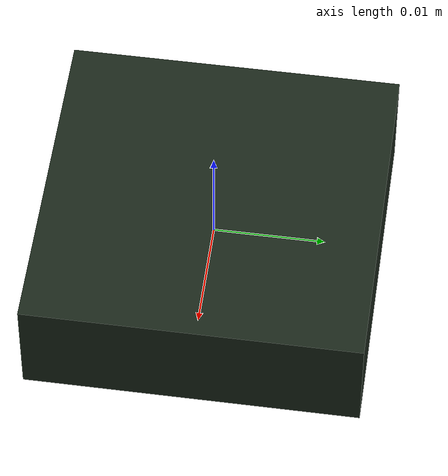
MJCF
<mujoco>
  <!-- IMU sensor with accelerometer and gyroscope -->
  <asset>
    <material name="imu_chip" rgba="0.1 0.15 0.1 1"/>
  </asset>

  <worldbody>
    <body name="imu_body">
      <!-- Small chip representation -->
      <geom name="imu_chip" type="box" size="0.015 0.015 0.005" pos="0 0 0" material="imu_chip"/>

      <!-- Site for IMU sensors -->
      <site name="imu_site" pos="0 0 0"/>
    </body>
  </worldbody>

  <sensor>
    <!-- 3-axis accelerometer -->
    <accelerometer name="imu_accel" site="imu_site"/>
    <!-- 3-axis gyroscope -->
    <gyro name="imu_gyro" site="imu_site"/>
    <!-- Magnetometer (compass) -->
    <magnetometer name="imu_mag" site="imu_site"/>
  </sensor>
</mujoco>
